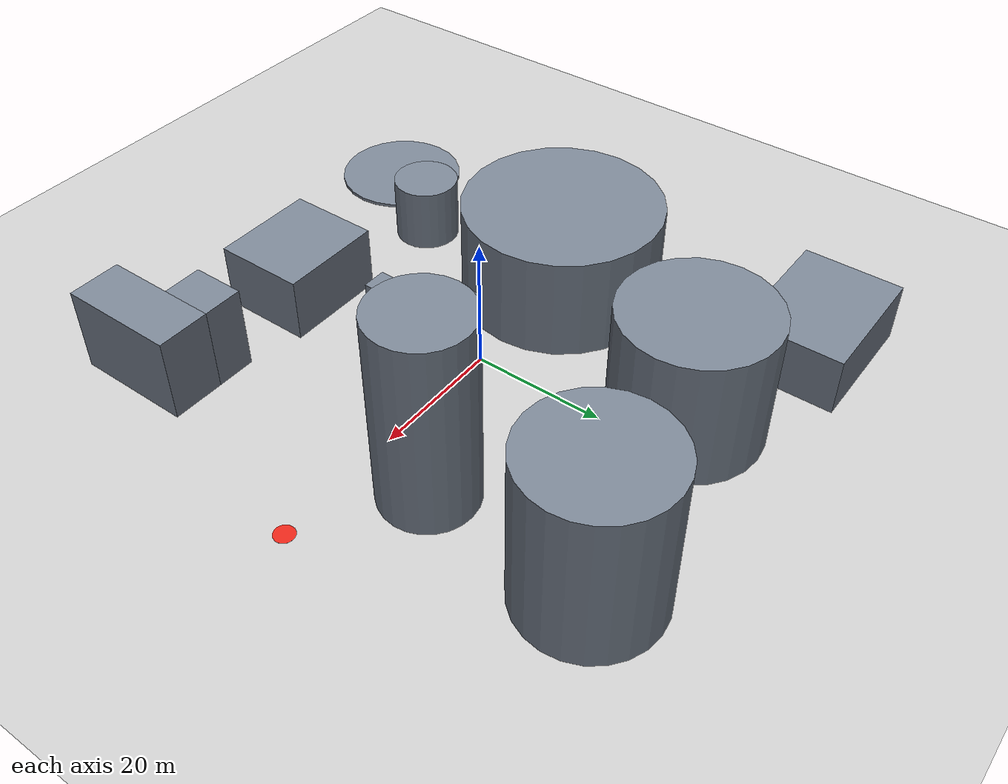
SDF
<?xml version="1.0"?>
<sdf version="1.6"><world name="logistics_5_industrial_transport">
  <physics name="default_physics" type="ode"><max_step_size>0.004</max_step_size><real_time_factor>1</real_time_factor><real_time_update_rate>250</real_time_update_rate><magnetic_field>6.0e-6 2.3e-5 -4.2e-5</magnetic_field></physics>
  <gravity>0 0 -9.8066</gravity>
  <include><uri>model://sun</uri></include>
  <include><uri>model://ground_plane</uri></include>
  <spherical_coordinates><surface_model>EARTH_WGS84</surface_model><latitude_deg>47.397742</latitude_deg><longitude_deg>8.545594</longitude_deg><elevation>488</elevation><heading_deg>0</heading_deg></spherical_coordinates>
<model name="obstacle_00_tank_a"><static>true</static><pose>-20.000 0.000 8.000 0 0 0</pose><link name="link"><collision name="collision"><geometry><cylinder><radius>15.000</radius><length>16.000</length></cylinder></geometry></collision><visual name="visual"><geometry><cylinder><radius>15.000</radius><length>16.000</length></cylinder></geometry><material><ambient>0.48 0.52 0.58 1</ambient><diffuse>0.48 0.52 0.58 1</diffuse></material></visual></link></model>
<model name="obstacle_01_tank_b"><static>true</static><pose>-20.000 -26.000 5.000 0 0 0</pose><link name="link"><collision name="collision"><geometry><cylinder><radius>5.000</radius><length>10.000</length></cylinder></geometry></collision><visual name="visual"><geometry><cylinder><radius>5.000</radius><length>10.000</length></cylinder></geometry><material><ambient>0.48 0.52 0.58 1</ambient><diffuse>0.48 0.52 0.58 1</diffuse></material></visual></link></model>
<model name="obstacle_02_factory_part_0"><static>true</static><pose>30.000 -35.000 6.500 0 0 0</pose><link name="link"><collision name="collision"><geometry><box><size>8.000 18.000 13.000</size></box></geometry></collision><visual name="visual"><geometry><box><size>8.000 18.000 13.000</size></box></geometry><material><ambient>0.48 0.52 0.58 1</ambient><diffuse>0.48 0.52 0.58 1</diffuse></material></visual></link></model>
<model name="obstacle_02_factory_part_1"><static>true</static><pose>23.000 -30.000 6.500 0 0 0</pose><link name="link"><collision name="collision"><geometry><box><size>6.000 8.000 13.000</size></box></geometry></collision><visual name="visual"><geometry><box><size>6.000 8.000 13.000</size></box></geometry><material><ambient>0.48 0.52 0.58 1</ambient><diffuse>0.48 0.52 0.58 1</diffuse></material></visual></link></model>
<model name="obstacle_03_cooling_tower"><static>true</static><pose>25.000 35.000 12.000 0 0 0</pose><link name="link"><collision name="collision"><geometry><cylinder><radius>10.000</radius><length>24.000</length></cylinder></geometry></collision><visual name="visual"><geometry><cylinder><radius>10.000</radius><length>24.000</length></cylinder></geometry><material><ambient>0.48 0.52 0.58 1</ambient><diffuse>0.48 0.52 0.58 1</diffuse></material></visual></link></model>
<model name="obstacle_04_warehouse"><static>true</static><pose>4.000 -31.000 5.000 0 0 0</pose><link name="link"><collision name="collision"><geometry><box><size>16.000 14.000 10.000</size></box></geometry></collision><visual name="visual"><geometry><box><size>16.000 14.000 10.000</size></box></geometry><material><ambient>0.48 0.52 0.58 1</ambient><diffuse>0.48 0.52 0.58 1</diffuse></material></visual></link></model>
<model name="obstacle_05_reactor"><static>true</static><pose>-6.000 30.000 10.000 0 0 0</pose><link name="link"><collision name="collision"><geometry><cylinder><radius>11.000</radius><length>20.000</length></cylinder></geometry></collision><visual name="visual"><geometry><cylinder><radius>11.000</radius><length>20.000</length></cylinder></geometry><material><ambient>0.48 0.52 0.58 1</ambient><diffuse>0.48 0.52 0.58 1</diffuse></material></visual></link></model>
<model name="obstacle_06_control_room"><static>true</static><pose>-30.000 37.500 4.500 0 0 0</pose><link name="link"><collision name="collision"><geometry><box><size>20.000 15.000 9.000</size></box></geometry></collision><visual name="visual"><geometry><box><size>20.000 15.000 9.000</size></box></geometry><material><ambient>0.48 0.52 0.58 1</ambient><diffuse>0.48 0.52 0.58 1</diffuse></material></visual></link></model>
<model name="obstacle_07_lightning_mast"><static>true</static><pose>24.000 10.000 15.000 0 0 0</pose><link name="link"><collision name="collision"><geometry><cylinder><radius>7.000</radius><length>30.000</length></cylinder></geometry></collision><visual name="visual"><geometry><cylinder><radius>7.000</radius><length>30.000</length></cylinder></geometry><material><ambient>0.48 0.52 0.58 1</ambient><diffuse>0.48 0.52 0.58 1</diffuse></material></visual></link></model>
<model name="obstacle_08_office_part_0"><static>true</static><pose>6.000 -9.500 6.000 0 0 0</pose><link name="link"><collision name="collision"><geometry><box><size>3.600 9.000 12.000</size></box></geometry></collision><visual name="visual"><geometry><box><size>3.600 9.000 12.000</size></box></geometry><material><ambient>0.48 0.52 0.58 1</ambient><diffuse>0.48 0.52 0.58 1</diffuse></material></visual></link></model>
<model name="obstacle_08_office_part_1"><static>true</static><pose>6.000 -2.500 6.000 0 0 0</pose><link name="link"><collision name="collision"><geometry><box><size>12.000 5.000 12.000</size></box></geometry></collision><visual name="visual"><geometry><box><size>12.000 5.000 12.000</size></box></geometry><material><ambient>0.48 0.52 0.58 1</ambient><diffuse>0.48 0.52 0.58 1</diffuse></material></visual></link></model>
<model name="obstacle_09_waste_pool"><static>true</static><pose>-30.000 -40.000 0.250 0 0 0</pose><link name="link"><collision name="collision"><geometry><cylinder><radius>10.000</radius><length>0.500</length></cylinder></geometry></collision><visual name="visual"><geometry><cylinder><radius>10.000</radius><length>0.500</length></cylinder></geometry><material><ambient>0.48 0.52 0.58 1</ambient><diffuse>0.48 0.52 0.58 1</diffuse></material></visual></link></model>
<model name="start_zone"><static>true</static><pose>-40.000 0.000 0.011 0 0 0</pose><link name="link"><visual name="visual"><geometry><cylinder><radius>1.5</radius><length>0.02</length></cylinder></geometry><material><ambient>0.1 0.8 0.1 1</ambient><diffuse>0.1 0.8 0.1 1</diffuse></material></visual></link></model>
<model name="goal_zone"><static>true</static><pose>40.000 0.000 0.011 0 0 0</pose><link name="link"><visual name="visual"><geometry><cylinder><radius>1.5</radius><length>0.02</length></cylinder></geometry><material><ambient>0.9 0.15 0.1 1</ambient><diffuse>0.9 0.15 0.1 1</diffuse></material></visual></link></model>
</world></sdf>
